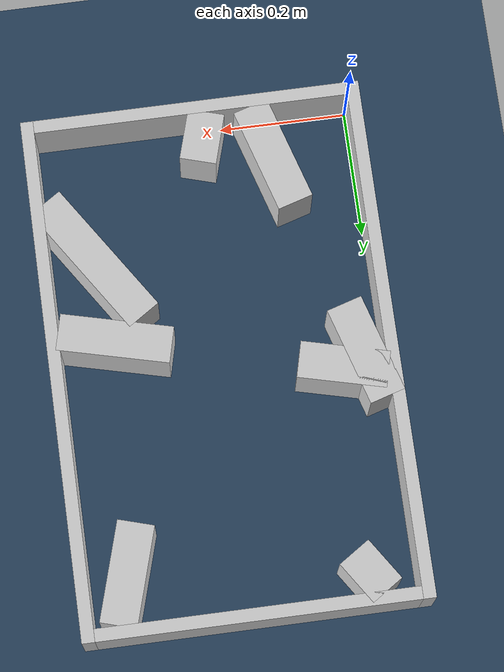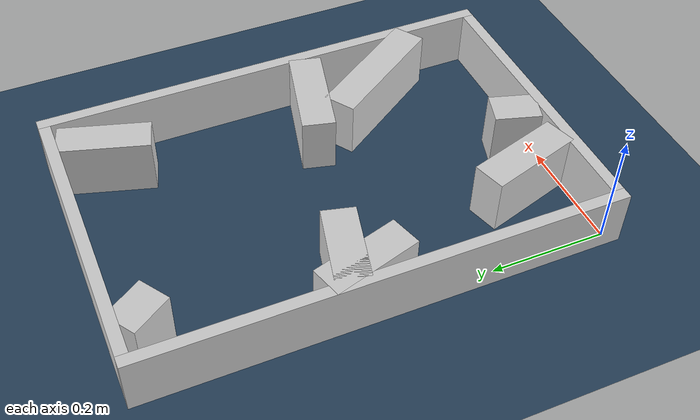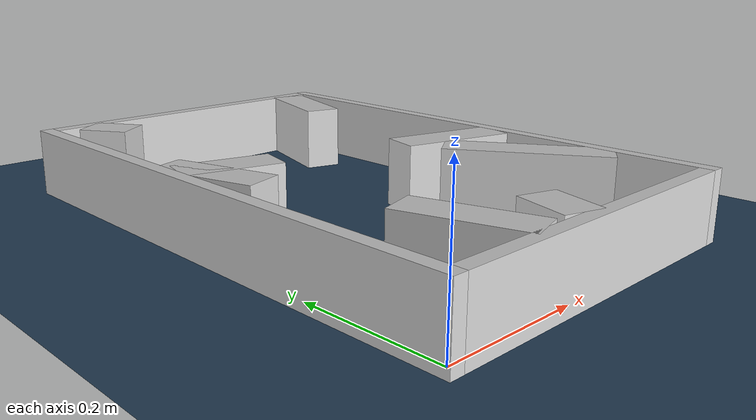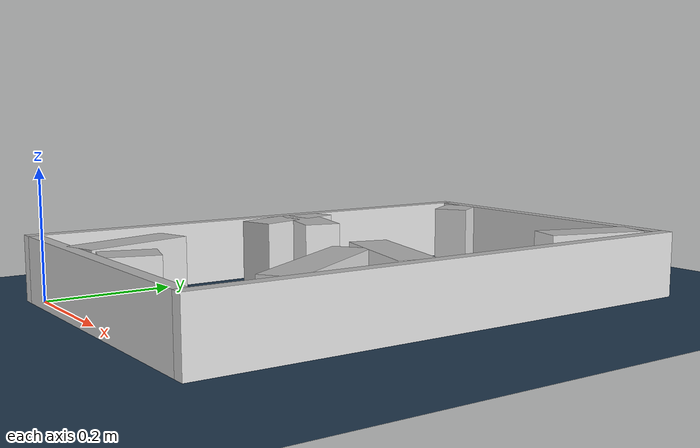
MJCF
<?xml version="1.0" ?>
<mujoco model="generated_real_template">
  <compiler angle="degree"/>
  <option timestep="0.002" integrator="implicitfast" iterations="100" cone="elliptic"/>
  <default>
    <geom density="1"/>
  </default>
  <asset>
    <texture builtin="gradient" height="3072" rgb1="0.3 0.5 0.7" rgb2="0 0 0" type="skybox" width="512"/>
    <texture builtin="checker" height="300" mark="edge" markrgb="0.8 0.8 0.8" name="groundplane" rgb1="0.2 0.3 0.4" rgb2="0.1 0.2 0.3" type="2d" width="300"/>
    <material name="groundplane" reflectance="0.2" texrepeat="5 5" texture="groundplane" texuniform="true"/>
  </asset>
  <worldbody>
    <light dir="0 0 -1" directional="true" pos="0 0 1.5"/>
    <geom name="floor" type="plane" condim="4" friction="0.5 0.005 0.001" material="groundplane" size="0 0 0.05"/>
    <body name="walls">
      <geom name="wall_boundary_left" type="box" condim="4" friction="1.0 0.005 0.0001" rgba="0.8 0.8 0.8 1" pos="-0.010000 0.387500 0.050000" euler="0 0 0.000000" size="0.010000 0.407500 0.050000"/>
      <geom name="wall_boundary_right" type="box" condim="4" friction="1.0 0.005 0.0001" rgba="0.8 0.8 0.8 1" pos="0.500000 0.387500 0.050000" euler="0 0 0.000000" size="0.010000 0.407500 0.050000"/>
      <geom name="wall_boundary_bottom" type="box" condim="4" friction="1.0 0.005 0.0001" rgba="0.8 0.8 0.8 1" pos="0.245000 -0.010000 0.050000" euler="0 0 0.000000" size="0.245000 0.010000 0.050000"/>
      <geom name="wall_boundary_top" type="box" condim="4" friction="1.0 0.005 0.0001" rgba="0.8 0.8 0.8 1" pos="0.245000 0.785000 0.050000" euler="0 0 0.000000" size="0.245000 0.010000 0.050000"/>
      <geom name="wall_inner_1_1" type="box" condim="4" friction="1.0 0.005 0.0001" rgba="0.8 0.8 0.8 1" pos="0.066479 0.425840 0.050000" euler="0 0 -14.101945" size="0.068545 0.028500 0.050000"/>
      <geom name="wall_inner_1_2" type="box" condim="4" friction="1.0 0.005 0.0001" rgba="0.8 0.8 0.8 1" pos="0.405432 0.340689 0.050000" euler="0 0 -14.101945" size="0.087196 0.028500 0.050000"/>
      <geom name="wall_inner_2_1" type="box" condim="4" friction="1.0 0.005 0.0001" rgba="0.8 0.8 0.8 1" pos="0.232801 0.038660 0.050000" euler="0 0 73.355160" size="0.040350 0.028500 0.050000"/>
      <geom name="wall_inner_2_2" type="box" condim="4" friction="1.0 0.005 0.0001" rgba="0.8 0.8 0.8 1" pos="0.430551 0.700108 0.050000" euler="0 0 73.355160" size="0.078168 0.028500 0.050000"/>
      <geom name="wall_inner_3_1" type="box" condim="4" friction="1.0 0.005 0.0001" rgba="0.8 0.8 0.8 1" pos="0.029974 0.407725 0.050000" euler="0 0 -73.309906" size="0.078948 0.028500 0.050000"/>
      <geom name="wall_inner_3_2" type="box" condim="4" friction="1.0 0.005 0.0001" rgba="0.8 0.8 0.8 1" pos="0.127861 0.081243 0.050000" euler="0 0 -73.309906" size="0.084817 0.028500 0.050000"/>
      <geom name="wall_inner_4_1" type="box" condim="4" friction="1.0 0.005 0.0001" rgba="0.8 0.8 0.8 1" pos="0.421596 0.211954 0.050000" euler="0 0 123.396272" size="0.117380 0.028500 0.050000"/>
      <geom name="wall_inner_4_2" type="box" condim="4" friction="1.0 0.005 0.0001" rgba="0.8 0.8 0.8 1" pos="0.071197 0.743437 0.050000" euler="0 0 123.396272" size="0.037805 0.028500 0.050000"/>
    </body>
  </worldbody>
</mujoco>
